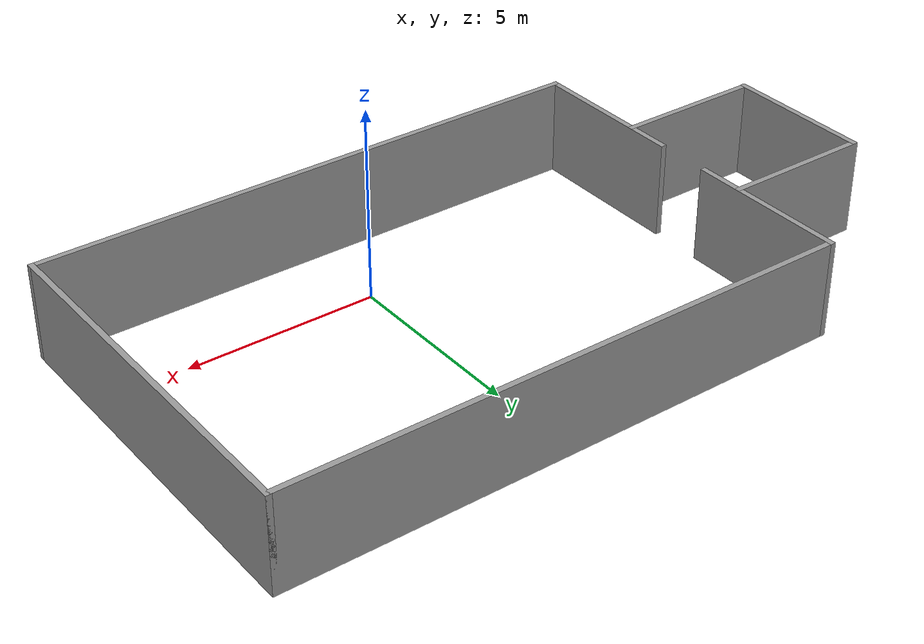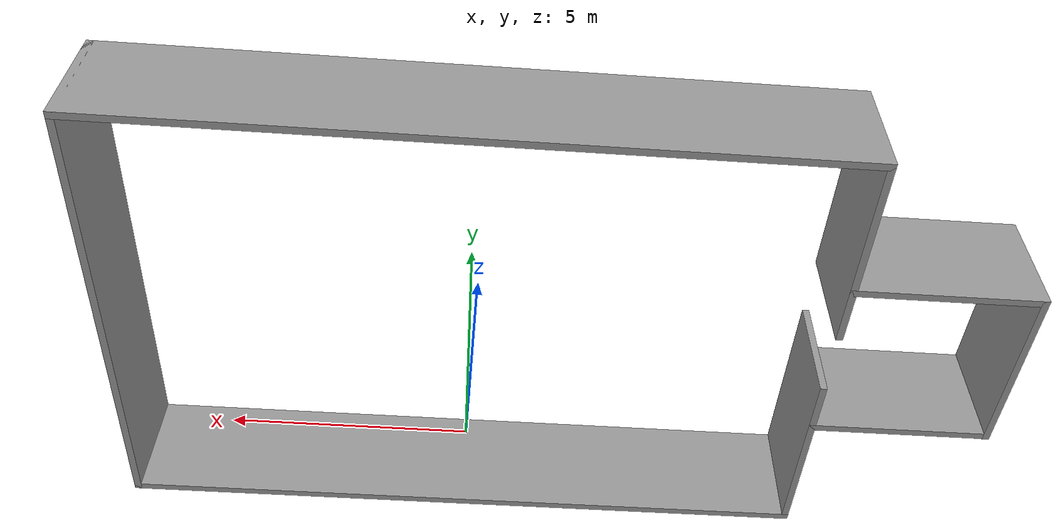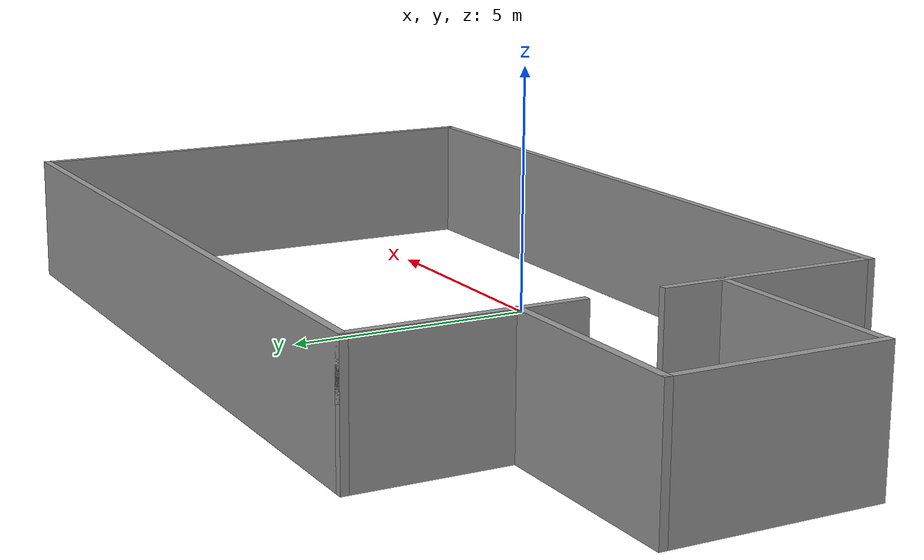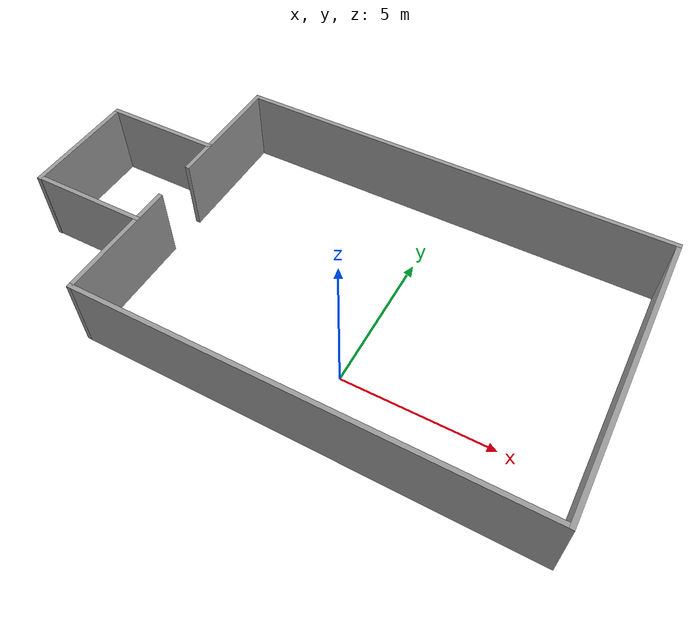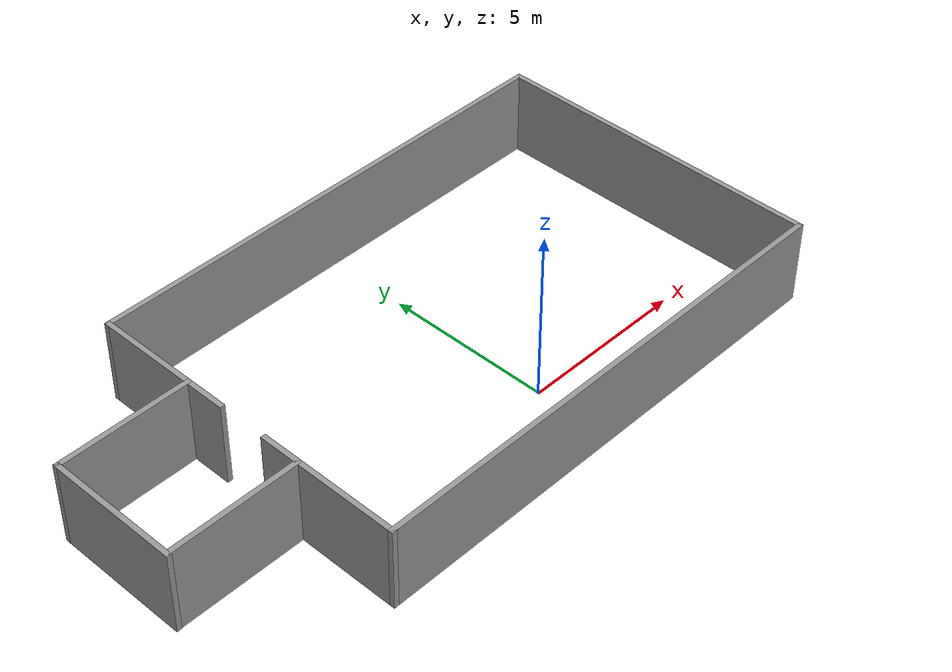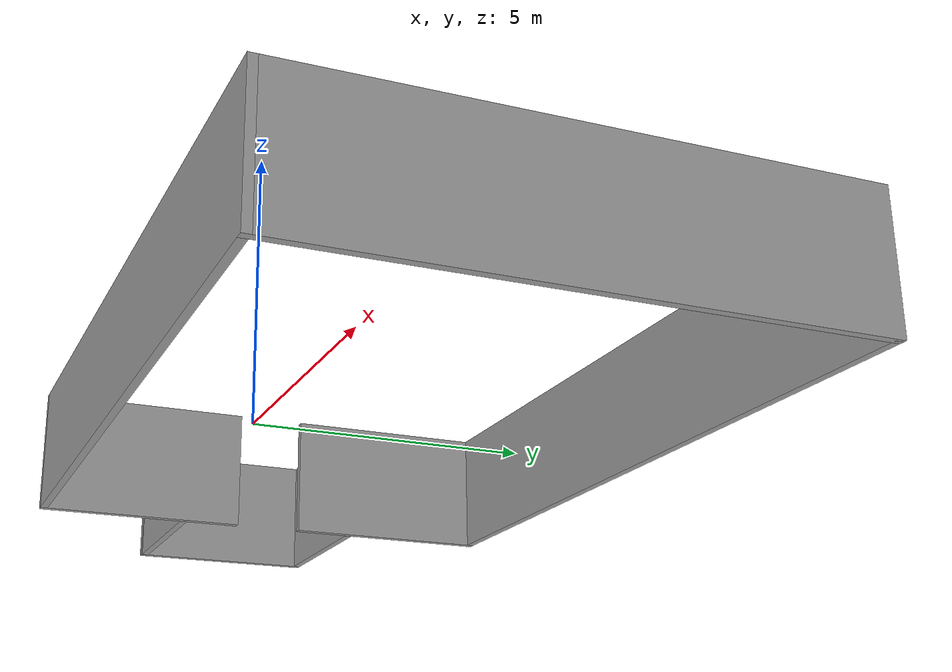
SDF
<?xml version='1.0'?>
<sdf version='1.7'>
  <model name='room3'>
    <pose>-1.96331 2.58604 0 0 -0 0</pose>
    <link name='Wall_13'>
      <collision name='Wall_13_Collision'>
        <geometry>
          <box>
            <size>4 0.15 2.5</size>
          </box>
        </geometry>
        <pose>0 0 1.25 0 -0 0</pose>
      </collision>
      <visual name='Wall_13_Visual'>
        <pose>0 0 1.25 0 -0 0</pose>
        <geometry>
          <box>
            <size>4 0.15 2.5</size>
          </box>
        </geometry>
        <material>
          <script>
            <uri>file://media/materials/scripts/gazebo.material</uri>
            <name>Gazebo/Grey</name>
          </script>
          <ambient>1 1 1 1</ambient>
        </material>
        <meta>
          <layer>0</layer>
        </meta>
      </visual>
      <pose>-7.42779 1.94263 0 0 -0 3.14159</pose>
    </link>
    <link name='Wall_14'>
      <collision name='Wall_14_Collision'>
        <geometry>
          <box>
            <size>4 0.15 2.5</size>
          </box>
        </geometry>
        <pose>0 0 1.25 0 -0 0</pose>
      </collision>
      <visual name='Wall_14_Visual'>
        <pose>0 0 1.25 0 -0 0</pose>
        <geometry>
          <box>
            <size>4 0.15 2.5</size>
          </box>
        </geometry>
        <material>
          <script>
            <uri>file://media/materials/scripts/gazebo.material</uri>
            <name>Gazebo/Grey</name>
          </script>
          <ambient>1 1 1 1</ambient>
        </material>
        <meta>
          <layer>0</layer>
        </meta>
      </visual>
      <pose>-9.35279 0.017629 0 0 -0 -1.5708</pose>
    </link>
    <link name='Wall_15'>
      <collision name='Wall_15_Collision'>
        <geometry>
          <box>
            <size>4 0.15 2.5</size>
          </box>
        </geometry>
        <pose>0 0 1.25 0 -0 0</pose>
      </collision>
      <visual name='Wall_15_Visual'>
        <pose>0 0 1.25 0 -0 0</pose>
        <geometry>
          <box>
            <size>4 0.15 2.5</size>
          </box>
        </geometry>
        <material>
          <script>
            <uri>file://media/materials/scripts/gazebo.material</uri>
            <name>Gazebo/Grey</name>
          </script>
          <ambient>1 1 1 1</ambient>
        </material>
        <meta>
          <layer>0</layer>
        </meta>
      </visual>
      <pose>-7.42779 -1.89216 0 0 -0 0</pose>
    </link>
    <link name='Wall_2'>
      <collision name='Wall_2_Collision'>
        <geometry>
          <box>
            <size>15 0.15 2.5</size>
          </box>
        </geometry>
        <pose>0 0 1.25 0 -0 0</pose>
      </collision>
      <visual name='Wall_2_Visual'>
        <pose>0 0 1.25 0 -0 0</pose>
        <geometry>
          <box>
            <size>15 0.15 2.5</size>
          </box>
        </geometry>
        <material>
          <script>
            <uri>file://media/materials/scripts/gazebo.material</uri>
            <name>Gazebo/Grey</name>
          </script>
          <ambient>1 1 1 1</ambient>
        </material>
        <meta>
          <layer>0</layer>
        </meta>
      </visual>
      <pose>1.92779 4.925 0 0 -0 0</pose>
    </link>
    <link name='Wall_3'>
      <collision name='Wall_3_Collision'>
        <geometry>
          <box>
            <size>10 0.15 2.5</size>
          </box>
        </geometry>
        <pose>0 0 1.25 0 -0 0</pose>
      </collision>
      <visual name='Wall_3_Visual'>
        <pose>0 0 1.25 0 -0 0</pose>
        <geometry>
          <box>
            <size>10 0.15 2.5</size>
          </box>
        </geometry>
        <material>
          <script>
            <uri>file://media/materials/scripts/gazebo.material</uri>
            <name>Gazebo/Grey</name>
          </script>
          <ambient>1 1 1 1</ambient>
        </material>
        <meta>
          <layer>0</layer>
        </meta>
      </visual>
      <pose>9.35279 -0 0 0 -0 -1.5708</pose>
    </link>
    <link name='Wall_4'>
      <collision name='Wall_4_Collision'>
        <geometry>
          <box>
            <size>15 0.15 2.5</size>
          </box>
        </geometry>
        <pose>0 0 1.25 0 -0 0</pose>
      </collision>
      <visual name='Wall_4_Visual'>
        <pose>0 0 1.25 0 -0 0</pose>
        <geometry>
          <box>
            <size>15 0.15 2.5</size>
          </box>
        </geometry>
        <material>
          <script>
            <uri>file://media/materials/scripts/gazebo.material</uri>
            <name>Gazebo/Grey</name>
          </script>
          <ambient>1 1 1 1</ambient>
        </material>
        <meta>
          <layer>0</layer>
        </meta>
      </visual>
      <pose>1.92779 -4.925 0 0 -0 3.14159</pose>
    </link>
    <link name='Wall_5'>
      <collision name='Wall_5_Collision'>
        <geometry>
          <box>
            <size>4.3 0.15 2.5</size>
          </box>
        </geometry>
        <pose>0 0 1.25 0 -0 0</pose>
      </collision>
      <visual name='Wall_5_Visual'>
        <pose>0 0 1.25 0 -0 0</pose>
        <geometry>
          <box>
            <size>4.3 0.15 2.5</size>
          </box>
        </geometry>
        <material>
          <script>
            <uri>file://media/materials/scripts/gazebo.material</uri>
            <name>Gazebo/Grey</name>
          </script>
          <ambient>1 1 1 1</ambient>
        </material>
        <meta>
          <layer>0</layer>
        </meta>
      </visual>
      <pose>-5.49721 -2.85 0 0 -0 1.5708</pose>
    </link>
    <link name='Wall_7'>
      <collision name='Wall_7_Collision'>
        <geometry>
          <box>
            <size>4.3 0.15 2.5</size>
          </box>
        </geometry>
        <pose>0 0 1.25 0 -0 0</pose>
      </collision>
      <visual name='Wall_7_Visual'>
        <pose>0 0 1.25 0 -0 0</pose>
        <geometry>
          <box>
            <size>4.3 0.15 2.5</size>
          </box>
        </geometry>
        <material>
          <script>
            <uri>file://media/materials/scripts/gazebo.material</uri>
            <name>Gazebo/Grey</name>
          </script>
          <ambient>1 1 1 1</ambient>
        </material>
        <meta>
          <layer>0</layer>
        </meta>
      </visual>
      <pose>-5.49721 2.85 0 0 -0 -1.5708</pose>
    </link>
    <static>1</static>
  </model>
</sdf>
